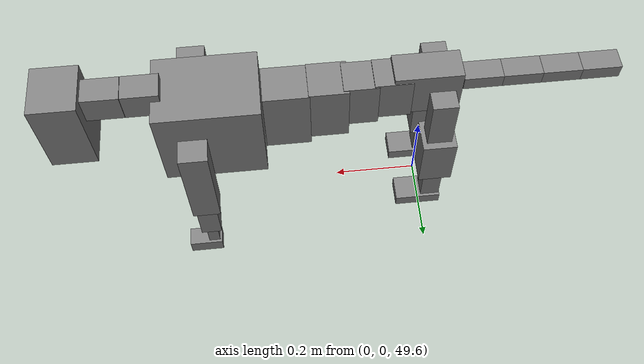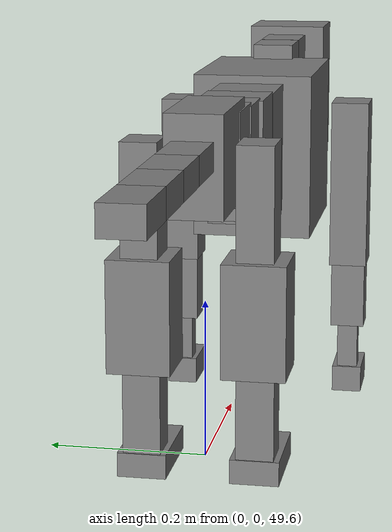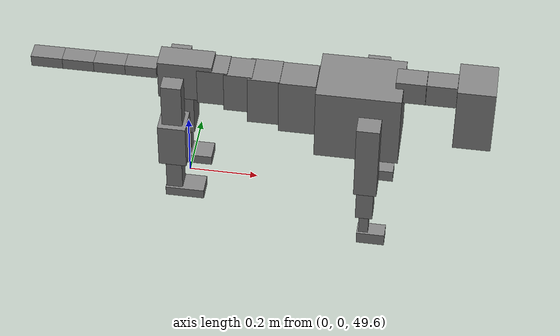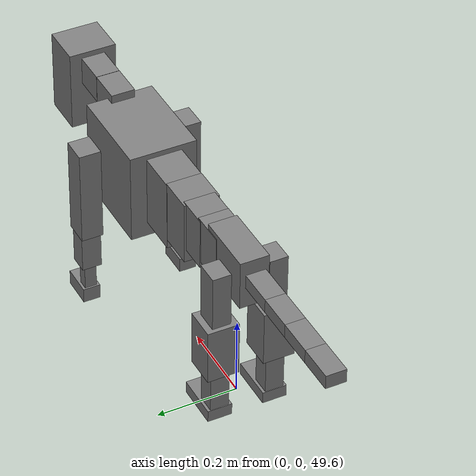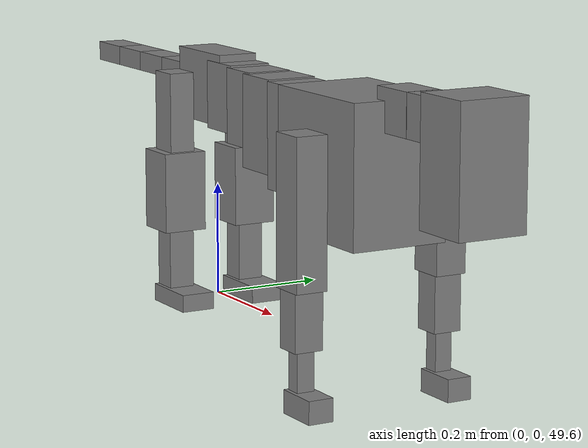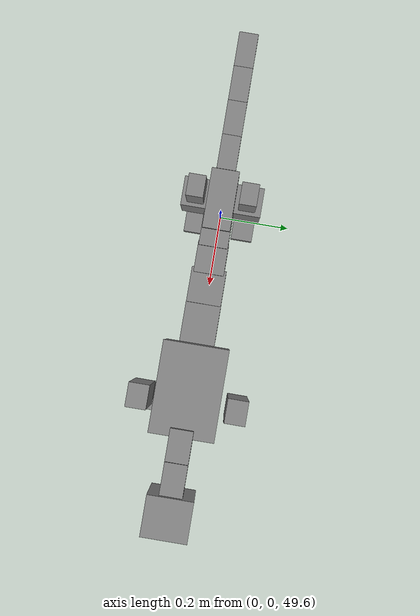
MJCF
<mujoco model="dog">

    <default>
        <joint armature="0.02" stiffness="1" damping="0.2" limited="true"/>
        <geom condim="3" friction="1 0.05 0.05" margin="0.01"/>
        <motor ctrllimited="true" ctrlrange="-1.0 1.0" forcelimited="true" gear="50"/>
    </default>

    <compiler inertiafromgeom="true" angle="radian"/>

    <option timestep="0.016" iterations="50" tolerance="1e-10" solver="Newton" jacobian="dense" cone="pyramidal"/>

    <size nconmax="20000" njmax="60000" nstack="5000000"/>
    <visual>
        <map force="0.1" zfar="30"/>
        <rgba haze="0.15 0.25 0.35 1"/>
        <quality shadowsize="2048"/>
        <global offwidth="800" offheight="800"/>
    </visual>

    <asset>
        <texture type="skybox" builtin="gradient" rgb1="0.3 0.5 0.7" rgb2="0 0 0" width="512" height="512"/>
        <texture name="texplane" type="2d" builtin="checker" rgb1=".2 .3 .4" rgb2=".1 0.15 0.2" width="512" height="512"
                 mark="cross" markrgb=".8 .8 .8"/>
        <texture name="texgeom" type="cube" builtin="flat" mark="cross" width="127" height="1278" rgb1="0.8 0.6 0.4"
                 rgb2="0.8 0.6 0.4" markrgb="1 1 1" random="0.01"/>

        <material name="matplane" reflectance="0.3" texture="texplane" texrepeat="1 1" texuniform="true"/>
        <material name="matgeom" texture="texgeom" texuniform="true" rgba="0.8 0.6 .4 1"/>
    </asset>

    <worldbody>
        <geom name="floor" pos="0 0 0" size="0 0 .25" type="plane" material="matplane" condim="3"/>

        <light directional="false" diffuse=".2 .2 .2" specular="0 0 0" pos="0 0 5" dir="0 0 -1" castshadow="false"/>
        <light mode="targetbodycom" target="torso" directional="false" diffuse=".8 .8 .8" specular="0.3 0.3 0.3"
               pos="0 0 4.0" dir="0 0 -1"/>

        <body name="root" pos="0 0 50">
            <freejoint name="root_1"/>
            <geom type="box" pos="0 0 -0.02" size="0.0774  0.0358  0.063" density="2030"/>

            <body name="spine1" pos="0.054 0 0">
                <joint name="spine1_y" axis="0 1 0" range="0 0.7" limited="true"/>
                <geom type="box" pos="0.02375 0 -0.03" size="0.04375  0.0375  0.05985" density="2030"/>

                <body name="spine2" pos="0.0612 0 0">
                    <joint name="spine2_y" axis="0 1 0" range="-0.15 0.15" limited="true"/>
                    <geom type="box" pos="0.03555  0  -0.04" size="0.04055  0.039  0.06615" density="2030"/>

                    <body name="spine3" pos="0.0730 0 0">
                        <joint name="spine3_y" axis="0 1 0" range="-0.15 0.15" limited="true"/>
                        <geom type="box" pos="0.03555  0  -0.057" size="0.04555  0.0445  0.081" density="2030"/>

                        <body name="spine4" pos="0.0780 0 0">
                            <joint name="spine4_y" axis="0 1 0" range="-0.15 0.15" limited="true"/>
                            <geom type="box" pos="0.05265  0  -0.07" size="0.05265  0.045  0.09135" density="2030"/>

                            <body name="torso" pos="0.1082 0 0">
                                <joint name="torso_y" axis="0 1 0" range="-0.15 0.15" limited="true"/>
                                <geom type="box" pos="0.11925  0  -0.085" size="0.11925  0.085  0.11745"
                                      density="2030"/>

                                <body name="neck1" pos="0.2160  0   0.0180">
                                    <joint name="neck1_y" axis="0 1 0" range="-1.2  -1" limited="true"/>
                                    <geom type="box" pos="0.0423  0  0" size="0.0423  0.03  0.036" density="2325"/>

                                    <body name="neck2" pos="0.0853  0  0">
                                        <joint name="neck2_y" axis="0 1 0" range="0.1  0" limited="true"/>
                                        <geom type="box" pos="0.0423  0  0" size="0.0423  0.03  0.036" density="2325"/>

                                        <body name="head" pos="0.0853  0  0">
                                            <joint name="head_y" axis="0 1 0" range="-0.3  -0.2" limited="true"/>
                                            <geom type="box" pos="0.0531  0  -0.055" size="0.0531  0.06  0.1044"
                                                  density="4030"/>

                                        </body>
                                    </body>
                                </body>

                                <body name="front_shoulder" pos="0.156  0   -0.0480">
                                    <joint name="front_shoulder_y" axis="0 1 0" range="-1 1.5" limited="true"/>
                                    <geom type="box" pos="0 0.13 -0.0981" size="0.0325  0.0277  0.1247" density="1158"/>
                                    <geom type="box" pos="0 -0.13 -0.0981" size="0.0325  0.0277  0.1247"
                                          density="1158"/>

                                    <body name="front_elbow" pos="0  0  -0.1962">
                                        <joint name="front_elbow_y" axis="0 1 0" range="-2 0" limited="true"/>
                                        <geom type="box" pos="0 0.13 -0.0620" size="0.0244  0.0250  0.0620"
                                              density="1081"/>
                                        <geom type="box" pos="0 -0.13 -0.0620" size="0.0244  0.0250  0.0620"
                                              density="1081"/>

                                        <body name="front_wrist" pos="0  0  -0.1240">
                                            <joint name="front_wrist_y" axis="0 1 0" range="-0.2 0" limited="true"/>
                                            <geom type="box" pos="0 0.13 -0.0414" size="0.0137  0.0152  0.0545"
                                                  density="1664"/>
                                            <geom type="box" pos="0 -0.13 -0.0414" size="0.0137  0.0152  0.0545"
                                                  density="1664"/>

                                            <body name="front_finger_end" pos="0  0  -0.0827">
                                                <joint name="front_finger_y" axis="0 1 0" range="-0.4 1"
                                                       limited="true"/>
                                                <geom type="box" pos="0.0220  0.13  -0.0045"
                                                      size="0.0403  0.0220  0.0195" density="1515"/>
                                                <geom type="box" pos="0.0220  -0.13  -0.0045"
                                                      size="0.0403  0.0220  0.0195" density="1515"/>

                                            </body>

                                        </body>
                                    </body>
                                </body>

                            </body>
                        </body>
                    </body>
                </body>
            </body>

            <body name="back_hip" pos="-0.03 0 -0.018">
                <joint name="back_hip_y" axis="0 1 0" range="-1.5 0.3" limited="true"/>
                <geom type="box" pos="0 0.07 -0.0670" size="0.0292  0.0229  0.0898" density="1154"/>
                <geom type="box" pos="0 -0.07 -0.0670" size="0.0292  0.0229  0.0898" density="1154"/>

                <body name="back_knee" pos="0  0  -0.1340">
                    <joint name="back_knee_y" axis="0 1 0" range="0 2.8" limited="true"/>
                    <geom type="box" pos="0 0.07 -0.0553" size="0.0399  0.0393  0.0709" density="1227"/>
                    <geom type="box" pos="0 -0.07 -0.0553" size="0.0399  0.0393  0.0709" density="1227"/>

                    <body name="back_ankle" pos="0  0  -0.1106">
                        <joint name="back_ankle_y" axis="0 1 0" range="-2.2 0" limited="true"/>
                        <geom type="box" pos="0 0.07 -0.0680" size="0.0234  0.0234  0.0792" density="1284"/>
                        <geom type="box" pos="0 -0.07 -0.0680" size="0.0234  0.0234  0.0792" density="1284"/>

                        <body name="back_toe_end" pos="0  0  -0.1359">
                            <joint name="back_toe_y" axis="0 1 0" range="-0.4 1" limited="true"/>
                            <geom type="box" pos="0.0305  0.07  -0.0003" size="0.0560  0.0305  0.0153" density="1515"/>
                            <geom type="box" pos="0.0305  -0.07  -0.0003" size="0.0560  0.0305  0.0153" density="1515"/>

                        </body>
                    </body>
                </body>
            </body>

            <body name="tail1" pos="-0.074 0 -0.006">
                <joint name="tail1_y" axis="0 1 0" range="-0.2 0.2" limited="true"/>
                <geom type="box" pos="-0.0536  0  0" size="0.045  0.025  0.0175" density="1587"/>

                <body name="tail2" pos="-0.09 0 0">
                    <joint name="tail2_y" axis="0 1 0" range="-0.2 0.2" limited="true"/>
                    <geom type="box" pos="-0.0536  0  0" size="0.045  0.025  0.0175" density="1587"/>

                    <body name="tail3" pos="-0.09 0 0">
                        <joint name="tail3_y" axis="0 1 0" range="-0.2 0.2" limited="true"/>
                        <geom type="box" pos="-0.0536  0  0" size="0.045  0.025  0.0175" density="1587"/>

                        <body name="tail4" pos="-0.09 0 0">
                            <joint name="tail4_y" axis="0 1 0" range="-0.2 0.2" limited="true"/>
                            <geom type="box" pos="-0.0536  0  0" size="0.045  0.025  0.0175" density="1587"/>

                        </body>
                    </body>
                </body>
            </body>
        </body>
    </worldbody>

    <actuator>
        <motor joint="spine1_y" forcerange="-150 150     "/>
        <motor joint="spine2_y" forcerange="-150 150     "/>
        <motor joint="spine3_y" forcerange="-150 150     "/>
        <motor joint="spine4_y" forcerange="-150 150     "/>
        <motor joint="torso_y" forcerange="-150 150     "/>
        <motor joint="neck1_y" forcerange="-100 100       "/>
        <motor joint="neck2_y" forcerange="-100 100       "/>
        <motor joint="head_y" forcerange="-150 150       "/>
        <motor joint="front_shoulder_y" forcerange="-179.38 105.60"/>
        <motor joint="front_elbow_y" forcerange="-174.58 107.01"/>
        <motor joint="front_wrist_y" forcerange="-57.80 63.73"/>
        <motor joint="front_finger_y" forcerange="-41.51 35.84"/>
        <motor joint="back_hip_y" forcerange="-258.75 246.74"/>
        <motor joint="back_knee_y" forcerange="-397.35 374.34"/>
        <motor joint="back_angle_y" forcerange="-165.86 108.96"/>
        <motor joint="back_toe_y" forcerange="-28.99 135.18"/>
        <motor joint="tail1_y" forcerange="-50 50     "/>
        <motor joint="tail2_y" forcerange="-50 50     "/>
        <motor joint="tail3_y" forcerange="-50 50     "/>
        <motor joint="tail4_y" forcerange="-50 50     "/>
    </actuator>
</mujoco>
